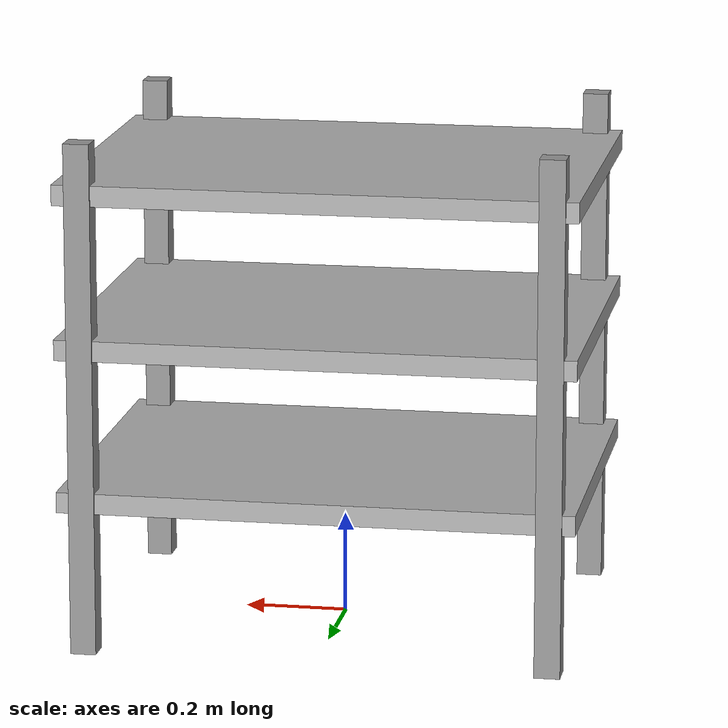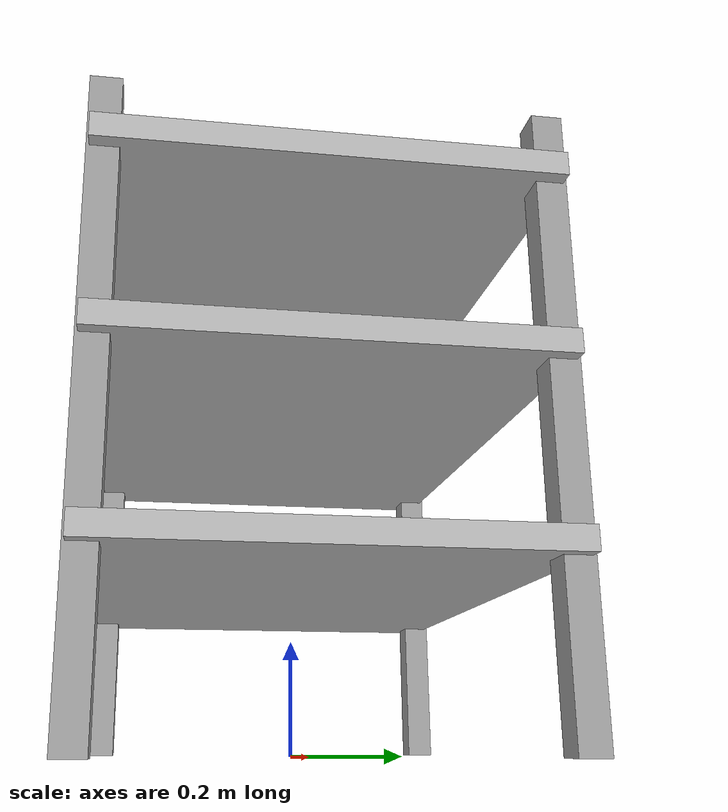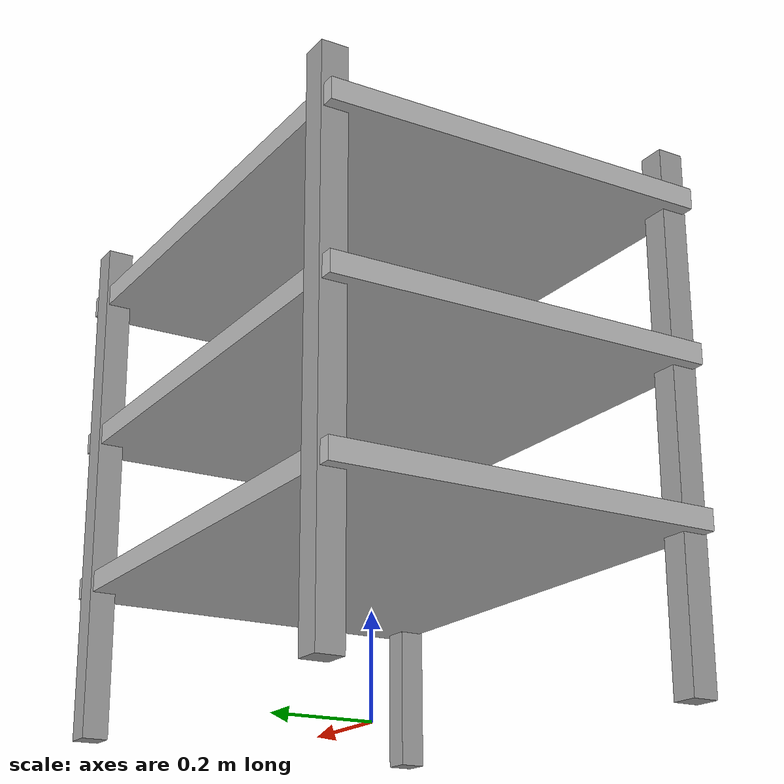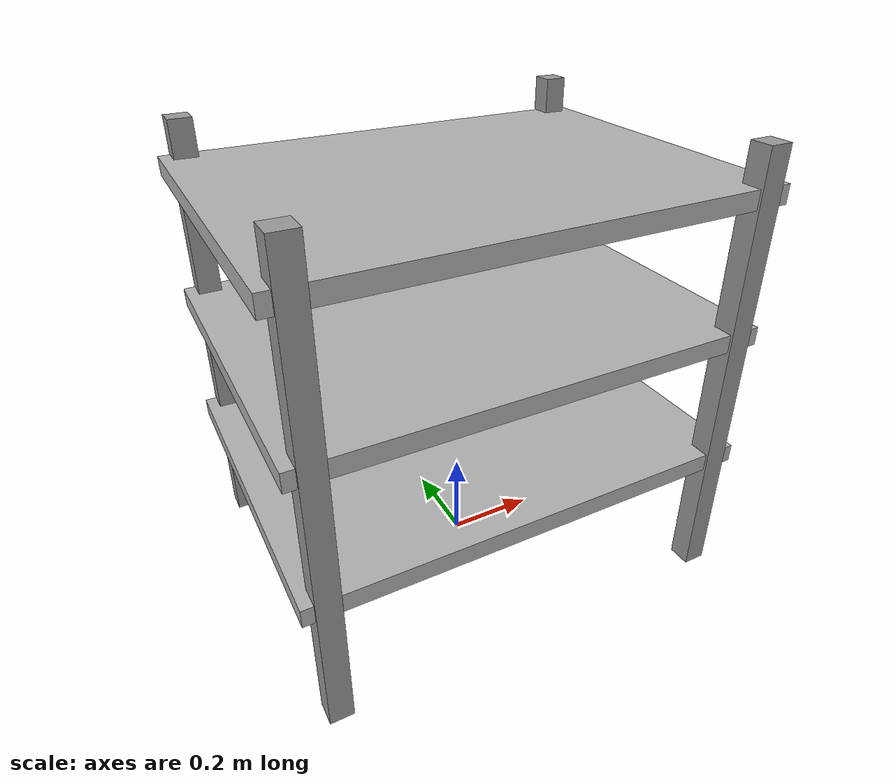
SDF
<?xml version="1.0"?>
<sdf version="1.6">
    <model name="shelf">
        <static>true</static>
        <link name="shelf_link">
            <pose>0 0 0 0 0 0</pose>

            <!-- Legs (Wider spacing: y = +/- 0.35) -->
            <visual name="leg_fl">
                <pose>0.45 0.35 0.5 0 0 0</pose>
                <geometry>
                    <box>
                        <size>0.05 0.05 1.0</size>
                    </box>
                </geometry>
                <material>
                    <ambient>0.6 0.6 0.6 1</ambient>
                    <diffuse>0.6 0.6 0.6 1</diffuse>
                </material>
            </visual>
            <collision name="leg_fl_collision">
                <pose>0.45 0.35 0.5 0 0 0</pose>
                <geometry>
                    <box>
                        <size>0.05 0.05 1.0</size>
                    </box>
                </geometry>
            </collision>

            <visual name="leg_fr">
                <pose>0.45 -0.35 0.5 0 0 0</pose>
                <geometry>
                    <box>
                        <size>0.05 0.05 1.0</size>
                    </box>
                </geometry>
                <material>
                    <ambient>0.6 0.6 0.6 1</ambient>
                    <diffuse>0.6 0.6 0.6 1</diffuse>
                </material>
            </visual>
            <collision name="leg_fr_collision">
                <pose>0.45 -0.35 0.5 0 0 0</pose>
                <geometry>
                    <box>
                        <size>0.05 0.05 1.0</size>
                    </box>
                </geometry>
            </collision>

            <visual name="leg_rl">
                <pose>-0.45 0.35 0.5 0 0 0</pose>
                <geometry>
                    <box>
                        <size>0.05 0.05 1.0</size>
                    </box>
                </geometry>
                <material>
                    <ambient>0.6 0.6 0.6 1</ambient>
                    <diffuse>0.6 0.6 0.6 1</diffuse>
                </material>
            </visual>
            <collision name="leg_rl_collision">
                <pose>-0.45 0.35 0.5 0 0 0</pose>
                <geometry>
                    <box>
                        <size>0.05 0.05 1.0</size>
                    </box>
                </geometry>
            </collision>

            <visual name="leg_rr">
                <pose>-0.45 -0.35 0.5 0 0 0</pose>
                <geometry>
                    <box>
                        <size>0.05 0.05 1.0</size>
                    </box>
                </geometry>
                <material>
                    <ambient>0.6 0.6 0.6 1</ambient>
                    <diffuse>0.6 0.6 0.6 1</diffuse>
                </material>
            </visual>
            <collision name="leg_rr_collision">
                <pose>-0.45 -0.35 0.5 0 0 0</pose>
                <geometry>
                    <box>
                        <size>0.05 0.05 1.0</size>
                    </box>
                </geometry>
            </collision>

            <!-- Shelves (Wider width: y size = 0.74 to span the legs) -->
            <!-- Lowest shelf raised to z = 0.30 for robot base clearance -->
            <visual name="shelf_low">
                <pose>0 0 0.30 0 0 0</pose>
                <geometry>
                    <box>
                        <size>1.0 0.74 0.04</size>
                    </box>
                </geometry>
                <material>
                    <ambient>0.7 0.7 0.7 1</ambient>
                    <diffuse>0.7 0.7 0.7 1</diffuse>
                </material>
            </visual>
            <collision name="shelf_low_collision">
                <pose>0 0 0.30 0 0 0</pose>
                <geometry>
                    <box>
                        <size>1.0 0.74 0.04</size>
                    </box>
                </geometry>
            </collision>

            <visual name="shelf_mid">
                <pose>0 0 0.60 0 0 0</pose>
                <geometry>
                    <box>
                        <size>1.0 0.74 0.04</size>
                    </box>
                </geometry>
                <material>
                    <ambient>0.7 0.7 0.7 1</ambient>
                    <diffuse>0.7 0.7 0.7 1</diffuse>
                </material>
            </visual>
            <collision name="shelf_mid_collision">
                <pose>0 0 0.60 0 0 0</pose>
                <geometry>
                    <box>
                        <size>1.0 0.74 0.04</size>
                    </box>
                </geometry>
            </collision>

            <visual name="shelf_top">
                <pose>0 0 0.90 0 0 0</pose>
                <geometry>
                    <box>
                        <size>1.0 0.74 0.04</size>
                    </box>
                </geometry>
                <material>
                    <ambient>0.7 0.7 0.7 1</ambient>
                    <diffuse>0.7 0.7 0.7 1</diffuse>
                </material>
            </visual>
            <collision name="shelf_top_collision">
                <pose>0 0 0.90 0 0 0</pose>
                <geometry>
                    <box>
                        <size>1.0 0.74 0.04</size>
                    </box>
                </geometry>
            </collision>
        </link>
    </model>
</sdf>
